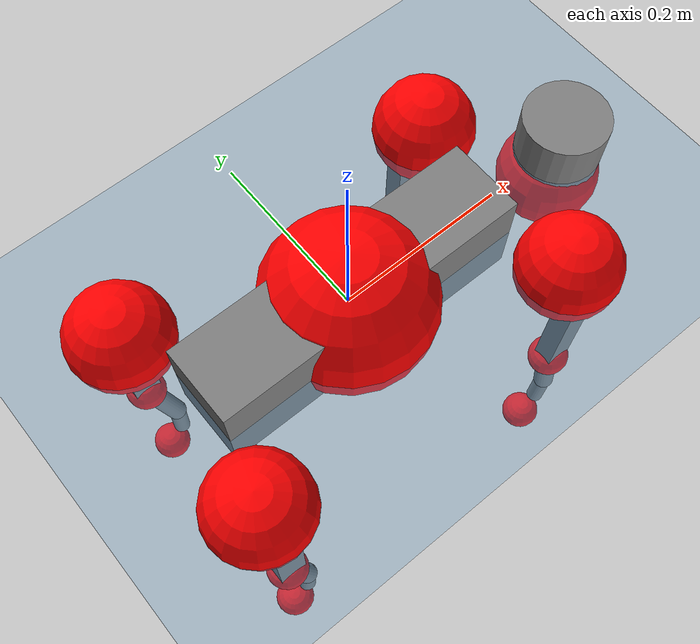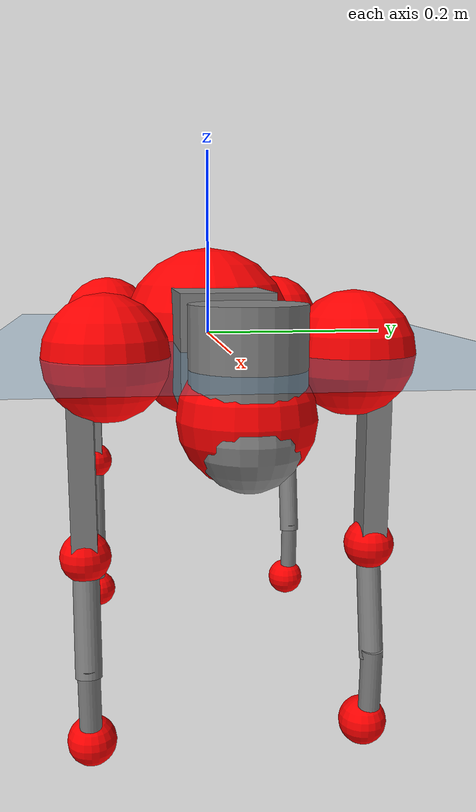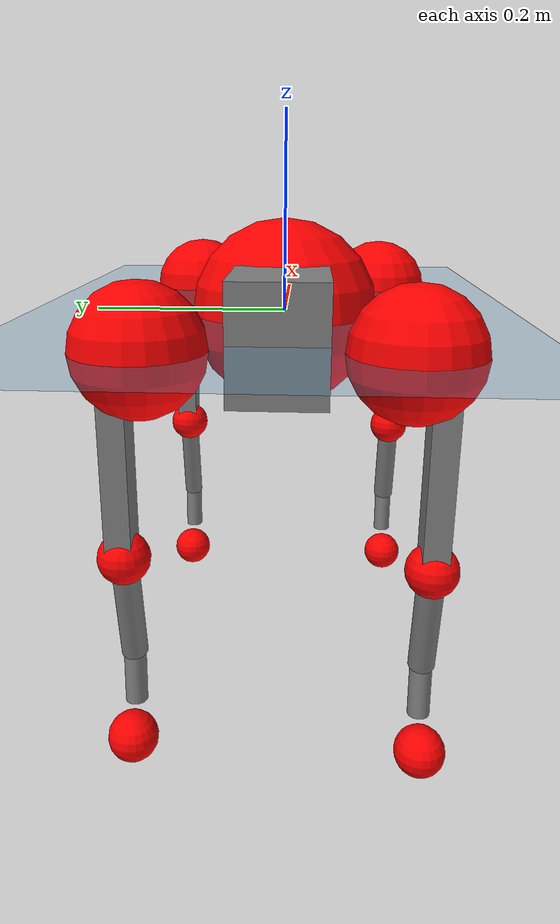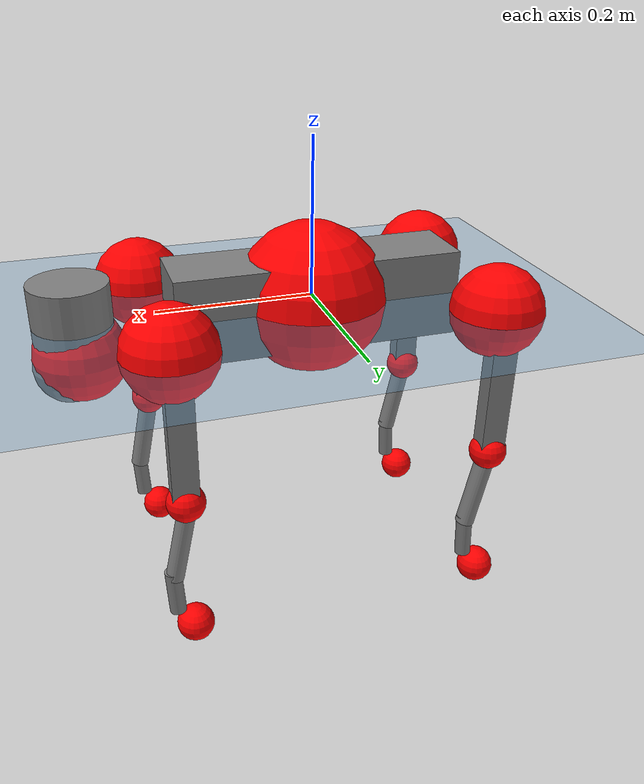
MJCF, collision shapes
<mujoco model="go2">
  <compiler angle="radian" assetdir="assets" balanceinertia="true" inertiafromgeom="false"/>

  <option timestep="0.005" density="1.2" viscosity="2e-05"/>

  <size nkey="1"/>

  <visual>
    <quality shadowsize="8192"/>
    <map shadowclip="0.5"/>
  </visual>

  <default>
    <default class="/">
      <geom contype="0" conaffinity="0" group="1" solref="-1000 -80"/>
      <site size="0.01 0.005 0.005" group="5"/>
      <general forcelimited="true" biastype="affine" gainprm="20" biasprm="0 -20 -0.5"/>
      <default class="go2">
        <joint armature="0.01" damping="0.01" frictionloss="0.2"/>
        <geom condim="1" margin="0.001"/>
        <default class="visual">
          <geom type="mesh" group="2"/>
        </default>
        <default class="collision">
          <geom group="3"/>
          <default class="foot">
            <geom size="0.022 0 0" condim="6" priority="1" friction="0.8 0.02 0.01" solimp="0.015 1 0.022"/>
          </default>
        </default>
        <default class="reward_collision_sphere">
          <geom group="5" rgba="1 0 0 1"/>
        </default>
      </default>
    </default>
  </default>

  <asset>
    <texture type="skybox" colorspace="auto" name="//unnamed_texture_0" builtin="gradient" rgb1="0.95 0.95 0.95" rgb2="0.95 0.95 0.95" width="100" height="600"/>
    <texture type="2d" colorspace="auto" name="texplane" builtin="checker" rgb1="0.345 0.575 0.748" rgb2="0.345 0.575 0.748" markrgb="1 1 1" width="512" height="512"/>
    <material name="MatPlane" class="/" texture="texplane" texuniform="true" texrepeat="2 2" specular="0.9"/>
    <material name="metal" class="/" rgba="0.9 0.95 0.95 1"/>
    <material name="black" class="/" rgba="0 0 0 1"/>
    <material name="white" class="/"/>
    <material name="gray" class="/" rgba="0.671705 0.692426 0.77427 1"/>
    <mesh name="base_0" class="/" file="base_0.obj"/>
    <mesh name="base_1" class="/" file="base_1.obj"/>
    <mesh name="base_2" class="/" file="base_2.obj"/>
    <mesh name="base_3" class="/" file="base_3.obj"/>
    <mesh name="base_4" class="/" file="base_4.obj"/>
    <mesh name="hip_0" class="/" file="hip_0.obj"/>
    <mesh name="hip_1" class="/" file="hip_1.obj"/>
    <mesh name="thigh_0" class="/" file="thigh_0.obj"/>
    <mesh name="thigh_1" class="/" file="thigh_1.obj"/>
    <mesh name="thigh_mirror_0" class="/" file="thigh_mirror_0.obj"/>
    <mesh name="thigh_mirror_1" class="/" file="thigh_mirror_1.obj"/>
    <mesh name="calf_0" class="/" file="calf_0.obj"/>
    <mesh name="calf_1" class="/" file="calf_1.obj"/>
    <mesh name="calf_mirror_0" class="/" file="calf_mirror_0.obj"/>
    <mesh name="calf_mirror_1" class="/" file="calf_mirror_1.obj"/>
    <mesh name="foot" class="/" file="foot.obj"/>
  </asset>

  <worldbody>
    <geom name="floor" class="/" size="100 100 0.125" type="plane" group="0" material="MatPlane"/>
    <light name="toplight_shadow" class="/" pos="0 0 5" dir="0.0990148 0.0990148 -0.990148" type="directional" ambient="0.04 0.04 0.04" diffuse="0.55 0.55 0.55" specular="0.12 0.12 0.12"/>
    <light name="toplight_fill" class="/" pos="0 0 5" dir="0.0990148 0.0990148 -0.990148" type="directional" castshadow="false" ambient="0.04 0.04 0.04" diffuse="0.3 0.3 0.3" specular="0.08 0.08 0.08"/>
    <body name="trunk" childclass="go2" pos="0.000521855 0.000150692 -0.00190533" quat="1 0.000699212 -0.000358559 -5.60251e-05">
      <inertial pos="0.0225677 0.00118747 -0.00486681" quat="0.0037299 0.709395 -0.00227444 0.704797" mass="6.48829" diaginertia="0.137376 0.087911 0.0142995"/>
      <joint name="//unnamed_joint_0" type="free" armature="0" damping="0" frictionloss="0"/>
      <geom name="//unnamed_geom_1" class="visual" material="black" mesh="base_0"/>
      <geom name="//unnamed_geom_2" class="visual" material="black" mesh="base_1"/>
      <geom name="//unnamed_geom_3" class="visual" material="black" mesh="base_2"/>
      <geom name="//unnamed_geom_4" class="visual" material="white" mesh="base_3"/>
      <geom name="//unnamed_geom_5" class="visual" material="gray" mesh="base_4"/>
      <geom name="trunk_1" class="collision" size="0.182747 0.0454197 0.055378" type="box"/>
      <geom name="trunk_2" class="collision" size="0.0485772 0.0437195" pos="0.298474 0 0.0089391" type="cylinder"/>
      <geom name="trunk_3" class="collision" size="0.0456626" pos="0.306853 0 -0.0536346"/>
      <geom name="//unnamed_geom_9" class="reward_collision_sphere" size="0.0971544"/>
      <geom name="//unnamed_geom_10" class="reward_collision_sphere" size="0.0582926" pos="0.293238 0 -0.040226"/>
      <site name="imu" pos="-0.0262408 -0.00283486 0.0350884" size="0.00971544"/>
      <camera name="track" pos="0 -1.94688 0" quat="0.707107 0.707107 0 0" mode="trackcom"/>
      <camera name="ego_camera" pos="0.326751 0 0.040226" quat="-0.5 -0.5 0.5 0.5"/>
      <body name="FL_hip" pos="0.20158 0.044565 0.000781786" quat="1 2.02657e-06 -2.26971e-06 -2.83637e-06">
        <inertial pos="-0.00674606 0.0016979 -0.00220043" quat="0.495726 0.49461 0.503753 0.505817" mass="0.627564" diaginertia="0.00112609 0.00052925 0.000276372"/>
        <joint name="FL_hip_joint" pos="0 0 0" axis="0.999987 0.00502833 0.0010881" range="-1.05231 1.03423" armature="0.00968739" damping="0.0022082" frictionloss="0.186762"/>
        <geom name="//unnamed_geom_11" class="visual" material="metal" mesh="hip_0"/>
        <geom name="//unnamed_geom_12" class="visual" material="gray" mesh="hip_1"/>
        <geom name="//unnamed_geom_13" class="collision" size="0.044691 0.0194309" pos="0 0.0778754 0" quat="0.707107 0.707107 0 0" type="cylinder"/>
        <geom name="//unnamed_geom_14" class="reward_collision_sphere" size="0.0582926" pos="0 0.0681409 0"/>
        <body name="FL_thigh" pos="-0.00167864 0.0917961 0.00222566" quat="1 1.16118e-05 -2.49723e-06 2.3837e-05">
          <inertial pos="-0.00472654 -0.0215806 -0.0290519" quat="0.829591 0.0829874 -0.0165042 0.551924" mass="1.03832" diaginertia="0.00738771 0.00502949 0.000489981"/>
          <joint name="FL_thigh_joint" pos="0 0 0" axis="-0.00427382 0.999975 0.00566685" stiffness="0.00243082" range="-1.55544 3.49279" armature="0.00962203" damping="0.00881663" frictionloss="0.194321"/>
          <geom name="//unnamed_geom_15" class="visual" material="metal" mesh="thigh_0"/>
          <geom name="//unnamed_geom_16" class="visual" material="gray" mesh="thigh_1"/>
          <geom name="//unnamed_geom_17" class="collision" size="0.103469 0.0119014 0.0165162" pos="0 0 -0.0952015" quat="0.707107 0 0.707107 0" type="box"/>
          <body name="FL_calf" pos="-0.000809451 -0.000836822 -0.190271" quat="1 -4.20316e-05 7.89383e-06 4.87721e-05">
            <inertial pos="0.00444207 -0.00212073 -0.12548" quat="0.710666 0.001504 -0.00455292 0.703513" mass="0.221715" diaginertia="0.00184691 0.00129049 3.03619e-05"/>
            <joint name="FL_calf_joint" pos="0 0 0" axis="-0.00159136 0.999999 2.26375e-05" stiffness="0.00633578" range="-2.76813 -0.846771" armature="0.00977738" damping="0.0111968" frictionloss="0.214021"/>
            <geom name="//unnamed_geom_18" class="visual" material="gray" mesh="calf_0"/>
            <geom name="//unnamed_geom_19" class="visual" material="black" mesh="calf_1"/>
            <geom name="FL_calf0" class="collision" size="0.0116585 0.0582926" pos="0.00837823 0 -0.0536346" quat="0.994493 0 -0.104807 0" type="cylinder"/>
            <geom name="//unnamed_geom_21" class="collision" size="0.010687 0.0315752" pos="0.0209456 0 -0.132299" quat="0.999688 0 0.0249974 0" type="cylinder"/>
            <geom name="//unnamed_geom_22" class="visual" pos="0 0 -0.190403" quat="1 0 0 0" material="black" mesh="foot"/>
            <geom name="FL_foot" class="foot" size="0.0171604" pos="-0.00209456 0 -0.190403"/>
            <geom name="//unnamed_geom_24" class="reward_collision_sphere" size="0.0242886"/>
            <geom name="//unnamed_geom_25" class="reward_collision_sphere" size="0.0242886" pos="-0.00209456 0 -0.190403"/>
            <site name="FL_foot" class="foot" pos="-0.00209456 0 -0.190403" size="0.00971544"/>
          </body>
        </body>
      </body>
      <body name="FR_hip" pos="0.203272 -0.0457933 -0.000284576" quat="0.999999 0.00103743 0.000411917 -0.00024972">
        <inertial pos="-0.00470841 -0.00192307 -0.000586948" quat="0.504875 0.50641 0.492068 0.496507" mass="0.643147" diaginertia="0.00112756 0.000528118 0.000278206"/>
        <joint name="FR_hip_joint" pos="0 0 0" axis="0.999999 0.000646589 0.00109779" range="-1.08663 1.0644" armature="0.00952976" damping="0.00928572" frictionloss="0.191972"/>
        <geom name="//unnamed_geom_26" class="visual" pos="0 6.92845e-10 2.97176e-08" quat="4.63268e-05 1 0 0" material="metal" mesh="hip_0"/>
        <geom name="//unnamed_geom_27" class="visual" pos="0 1.12319e-09 -7.35029e-08" quat="4.63268e-05 1 0 0" material="gray" mesh="hip_1"/>
        <geom name="//unnamed_geom_28" class="collision" size="0.044691 0.0194309" pos="0 -0.0778754 0" quat="0.707107 0.707107 0 0" type="cylinder"/>
        <geom name="//unnamed_geom_29" class="reward_collision_sphere" size="0.0582926" pos="0 -0.0681409 0"/>
        <body name="FR_thigh" pos="0.000128218 -0.0927292 0.00240238" quat="1 -0.000100912 -0.000333953 -1.93252e-05">
          <inertial pos="-0.00321362 0.0214806 -0.0280366" quat="0.552891 -0.0225488 0.0854349 0.828555" mass="1.06468" diaginertia="0.00749587 0.00506879 0.000496363"/>
          <joint name="FR_thigh_joint" pos="0 0 0" axis="0.000312428 -1 -0.000394937" stiffness="0.00487617" range="-3.49217 1.58063" armature="0.0102276" damping="0.00477349" frictionloss="0.188625"/>
          <geom name="//unnamed_geom_30" class="visual" material="metal" mesh="thigh_mirror_0"/>
          <geom name="//unnamed_geom_31" class="visual" material="gray" mesh="thigh_mirror_1"/>
          <geom name="//unnamed_geom_32" class="collision" size="0.103469 0.0119014 0.0165162" pos="0 0 -0.0952015" quat="0.707107 0 0.707107 0" type="box"/>
          <body name="FR_calf" pos="-0.00197097 3.43782e-06 -0.189496" quat="1 -1.25343e-05 2.73903e-05 1.005e-05">
            <inertial pos="0.00686403 -0.000681958 -0.125822" quat="0.700723 -6.59318e-05 0.0101732 0.713361" mass="0.216226" diaginertia="0.00183751 0.00127406 2.98846e-05"/>
            <joint name="FR_calf_joint" pos="0 0 0" axis="-0.000816842 -0.999999 -0.000983375" stiffness="0.001427" range="0.842539 2.7137" armature="0.00962046" damping="0.00266305" frictionloss="0.20313"/>
            <geom name="//unnamed_geom_33" class="visual" material="gray" mesh="calf_mirror_0"/>
            <geom name="//unnamed_geom_34" class="visual" material="black" mesh="calf_mirror_1"/>
            <geom name="FR_calf0" class="collision" size="0.0126301 0.0582926" pos="0.0104728 0 -0.0536346" quat="0.995004 0 -0.0998334 0" type="cylinder"/>
            <geom name="//unnamed_geom_36" class="collision" size="0.010687 0.0315752" pos="0.0209456 0 -0.132299" quat="0.999688 0 0.0249974 0" type="cylinder"/>
            <geom name="//unnamed_geom_37" class="visual" pos="0 0 -0.190403" quat="1 0 0 0" material="black" mesh="foot"/>
            <geom name="FR_foot" class="foot" size="0.0213551" pos="-0.00209456 0 -0.190403"/>
            <geom name="//unnamed_geom_39" class="reward_collision_sphere" size="0.0242886"/>
            <geom name="//unnamed_geom_40" class="reward_collision_sphere" size="0.0242886" pos="-0.00209456 0 -0.190403"/>
            <site name="FR_foot" class="foot" pos="-0.00209456 0 -0.190403" size="0.00971544"/>
          </body>
        </body>
      </body>
      <body name="RL_hip" pos="-0.202587 0.0453638 0.001214" quat="1 8.00525e-05 8.54151e-05 -1.91885e-05">
        <inertial pos="0.00621866 0.00113052 -0.00180131" quat="0.508463 0.496833 0.493691 0.500891" mass="0.622129" diaginertia="0.00113471 0.000518222 0.000274312"/>
        <joint name="RL_hip_joint" pos="0 0 0" axis="-0.999843 0.0108848 -0.0140013" stiffness="0.00207853" range="-1.07293 1.0743" armature="0.010217" damping="0.012562" frictionloss="0.192759"/>
        <geom name="//unnamed_geom_41" class="visual" pos="-1.33608e-09 0 -2.61902e-07" quat="4.63268e-05 0 1 0" material="metal" mesh="hip_0"/>
        <geom name="//unnamed_geom_42" class="visual" pos="-2.16594e-09 0 -2.3227e-07" quat="4.63268e-05 0 1 0" material="gray" mesh="hip_1"/>
        <geom name="//unnamed_geom_43" class="collision" size="0.044691 0.0194309" pos="0 0.0778754 0" quat="0.707107 0.707107 0 0" type="cylinder"/>
        <geom name="//unnamed_geom_44" class="reward_collision_sphere" size="0.0582926" pos="0 0.0681409 0"/>
        <body name="RL_thigh" pos="0.00102646 0.0913456 0.0010326" quat="1 4.46689e-05 7.8333e-06 -0.000120556">
          <inertial pos="-0.00175746 -0.0217134 -0.0312876" quat="0.82958 0.0848593 -0.0198189 0.551547" mass="1.08524" diaginertia="0.00785446 0.00527572 0.000515239"/>
          <joint name="RL_thigh_joint" pos="0 0 0" axis="0.000640833 0.999859 -0.0167889" range="-0.518705 4.53813" armature="0.00972801" damping="0.00133222" frictionloss="0.184968"/>
          <geom name="//unnamed_geom_45" class="visual" material="metal" mesh="thigh_0"/>
          <geom name="//unnamed_geom_46" class="visual" material="gray" mesh="thigh_1"/>
          <geom name="//unnamed_geom_47" class="collision" size="0.103469 0.0119014 0.0165162" pos="0 0 -0.0952015" quat="0.707107 0 0.707107 0" type="box"/>
          <body name="RL_calf" pos="-0.00045602 -0.00154654 -0.191127" quat="1 -8.74166e-05 -3.61735e-05 -0.000157002">
            <inertial pos="0.00473813 -0.000194651 -0.128423" quat="0.707112 0.00639046 -0.00523493 0.707054" mass="0.221089" diaginertia="0.00187244 0.00129059 2.99072e-05"/>
            <joint name="RL_calf_joint" pos="0 0 0" axis="0.00270227 0.999951 -0.00953582" stiffness="0.000604523" range="-2.71369 -0.880464" armature="0.0104022" damping="0" frictionloss="0.193711"/>
            <geom name="//unnamed_geom_48" class="visual" material="gray" mesh="calf_0"/>
            <geom name="//unnamed_geom_49" class="visual" material="black" mesh="calf_1"/>
            <geom name="RL_calf0" class="collision" size="0.0126301 0.0582926" pos="0.0104728 0 -0.0536346" quat="0.995004 0 -0.0998334 0" type="cylinder"/>
            <geom name="//unnamed_geom_51" class="collision" size="0.010687 0.0315752" pos="0.0209456 0 -0.132299" quat="0.999688 0 0.0249974 0" type="cylinder"/>
            <geom name="//unnamed_geom_52" class="visual" pos="0 0 -0.190403" quat="1 0 0 0" material="black" mesh="foot"/>
            <geom name="RL_foot" class="foot" size="0.0190088" pos="-0.00209456 0 -0.190403"/>
            <geom name="//unnamed_geom_54" class="reward_collision_sphere" size="0.0242886"/>
            <geom name="//unnamed_geom_55" class="reward_collision_sphere" size="0.0242886" pos="-0.00209456 0 -0.190403"/>
            <site name="RL_foot" class="foot" pos="-0.00209456 0 -0.190403" size="0.00971544"/>
          </body>
        </body>
      </body>
      <body name="RR_hip" pos="-0.200583 -0.0458156 0.000640331" quat="1 0.000100555 -0.000211704 0.000119886">
        <inertial pos="0.00498462 -0.00145164 0.000634088" quat="0.504524 0.496415 0.493113 0.505833" mass="0.619086" diaginertia="0.00116424 0.000531188 0.000277776"/>
        <joint name="RR_hip_joint" pos="0 0 0" axis="-0.99994 0.00264667 -0.0106522" range="-1.02867 1.04758" armature="0.00966728" damping="0.00351436" frictionloss="0.2149"/>
        <geom name="//unnamed_geom_56" class="visual" pos="1.33352e-09 6.92845e-10 -2.9162e-07" quat="2.14617e-09 4.63268e-05 4.63268e-05 -1" material="metal" mesh="hip_0"/>
        <geom name="//unnamed_geom_57" class="visual" pos="2.17227e-09 1.12319e-09 -1.58767e-07" quat="2.14617e-09 4.63268e-05 4.63268e-05 -1" material="gray" mesh="hip_1"/>
        <geom name="//unnamed_geom_58" class="collision" size="0.044691 0.0194309" pos="0 -0.0778754 0" quat="0.707107 0.707107 0 0" type="cylinder"/>
        <geom name="//unnamed_geom_59" class="reward_collision_sphere" size="0.0582926" pos="0 -0.0681409 0"/>
        <body name="RR_thigh" pos="0.000358797 -0.0935118 -0.00171366" quat="1 3.79642e-05 5.36118e-05 -5.59922e-06">
          <inertial pos="-0.00287435 0.022836 -0.0310898" quat="0.551144 -0.0198468 0.0841932 0.829915" mass="1.03911" diaginertia="0.00766948 0.00516356 0.000504767"/>
          <joint name="RR_thigh_joint" pos="0 0 0" axis="6.02842e-05 -1 -0.000372179" stiffness="0.00148338" range="-4.53488 0.515228" armature="0.00978735" damping="0.0212005" frictionloss="0.19912"/>
          <geom name="//unnamed_geom_60" class="visual" material="metal" mesh="thigh_mirror_0"/>
          <geom name="//unnamed_geom_61" class="visual" material="gray" mesh="thigh_mirror_1"/>
          <geom name="//unnamed_geom_62" class="collision" size="0.103469 0.0119014 0.0165162" pos="0 0 -0.0952015" quat="0.707107 0 0.707107 0" type="box"/>
          <body name="RR_calf" pos="-0.000688164 0.000450432 -0.192211" quat="0.999999 -0.000847518 -6.63408e-05 -0.000563486">
            <inertial pos="0.00573561 0.000470338 -0.126142" quat="0.707192 0.00060591 0.000558576 0.707021" mass="0.219848" diaginertia="0.00185868 0.00125942 2.95546e-05"/>
            <joint name="RR_calf_joint" pos="0 0 0" axis="-0.0108977 -0.999917 0.00693793" range="0.861079 2.73415" armature="0.00972538" damping="0.00517279" frictionloss="0.200047"/>
            <geom name="//unnamed_geom_63" class="visual" material="gray" mesh="calf_mirror_0"/>
            <geom name="//unnamed_geom_64" class="visual" material="black" mesh="calf_mirror_1"/>
            <geom name="RR_calf0" class="collision" size="0.0126301 0.0582926" pos="0.0104728 0 -0.0536346" quat="0.995004 0 -0.0998334 0" type="cylinder"/>
            <geom name="//unnamed_geom_66" class="collision" size="0.010687 0.0315752" pos="0.0209456 0 -0.132299" quat="0.999688 0 0.0249974 0" type="cylinder"/>
            <geom name="//unnamed_geom_67" class="visual" pos="0 0 -0.190403" quat="1 0 0 0" material="black" mesh="foot"/>
            <geom name="RR_foot" class="foot" size="0.0235102" pos="-0.00209456 0 -0.190403"/>
            <geom name="//unnamed_geom_69" class="reward_collision_sphere" size="0.0242886"/>
            <geom name="//unnamed_geom_70" class="reward_collision_sphere" size="0.0242886" pos="-0.00209456 0 -0.190403"/>
            <site name="RR_foot" class="foot" pos="-0.00209456 0 -0.190403" size="0.00971544"/>
          </body>
        </body>
      </body>
    </body>
  </worldbody>

  <contact>
    <pair class="/" geom1="floor" geom2="FL_foot" name="//unnamed_contact_0"/>
    <pair class="/" geom1="floor" geom2="FR_foot" name="//unnamed_contact_1"/>
    <pair class="/" geom1="floor" geom2="RL_foot" name="//unnamed_contact_2"/>
    <pair class="/" geom1="floor" geom2="RR_foot" name="//unnamed_contact_3"/>
  </contact>

  <actuator>
    <general name="FL_hip" class="/" joint="FL_hip_joint" forcerange="-23.2649 23.2649" gainprm="19.4737" biasprm="0 -19.4737 -0.496745"/>
    <general name="FL_thigh" class="/" joint="FL_thigh_joint" forcerange="-23.2673 23.2673" gainprm="19.4737" biasprm="0 -19.4737 -0.496745"/>
    <general name="FL_calf" class="/" joint="FL_calf_joint" forcerange="-43.019 43.019" gainprm="19.4737" biasprm="0 -19.4737 -0.496745"/>
    <general name="FR_hip" class="/" joint="FR_hip_joint" forcerange="-22.704 22.704" gainprm="19.4737" biasprm="0 -19.4737 -0.496745"/>
    <general name="FR_thigh" class="/" joint="FR_thigh_joint" forcerange="-22.3907 22.3907" gainprm="19.4737" biasprm="0 -19.4737 -0.496745"/>
    <general name="FR_calf" class="/" joint="FR_calf_joint" forcerange="-44.1178 44.1178" gainprm="19.4737" biasprm="0 -19.4737 -0.496745"/>
    <general name="RL_hip" class="/" joint="RL_hip_joint" forcerange="-23.1789 23.1789" gainprm="19.4737" biasprm="0 -19.4737 -0.496745"/>
    <general name="RL_thigh" class="/" joint="RL_thigh_joint" forcerange="-21.4834 21.4834" gainprm="19.4737" biasprm="0 -19.4737 -0.496745"/>
    <general name="RL_calf" class="/" joint="RL_calf_joint" forcerange="-46.3712 46.3712" gainprm="19.4737" biasprm="0 -19.4737 -0.496745"/>
    <general name="RR_hip" class="/" joint="RR_hip_joint" forcerange="-23.1625 23.1625" gainprm="19.4737" biasprm="0 -19.4737 -0.496745"/>
    <general name="RR_thigh" class="/" joint="RR_thigh_joint" forcerange="-23.8098 23.8098" gainprm="19.4737" biasprm="0 -19.4737 -0.496745"/>
    <general name="RR_calf" class="/" joint="RR_calf_joint" forcerange="-43.6691 43.6691" gainprm="19.4737" biasprm="0 -19.4737 -0.496745"/>
  </actuator>

  <sensor>
    <gyro site="imu" name="imu_angular_velocity"/>
    <velocimeter site="imu" name="imu_linear_velocity"/>
    <framelinvel objtype="site" objname="FL_foot" name="FL_foot_global_linear_velocity"/>
    <framelinvel objtype="site" objname="FR_foot" name="FR_foot_global_linear_velocity"/>
    <framelinvel objtype="site" objname="RL_foot" name="RL_foot_global_linear_velocity"/>
    <framelinvel objtype="site" objname="RR_foot" name="RR_foot_global_linear_velocity"/>
  </sensor>

  <keyframe>
    <key name="home" qpos="0 0 0.325 1 0 0 0 0.1 0.8 -1.5 -0.1 -0.8 1.5 -0.1 0.8 -1.5 0.1 -0.8 1.5"/>
  </keyframe>
</mujoco>
